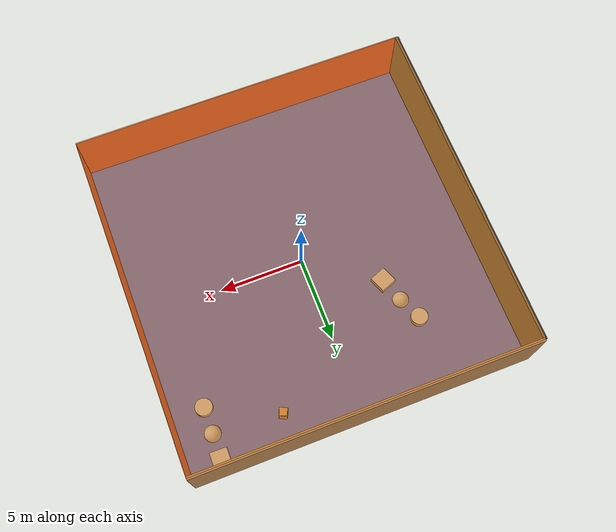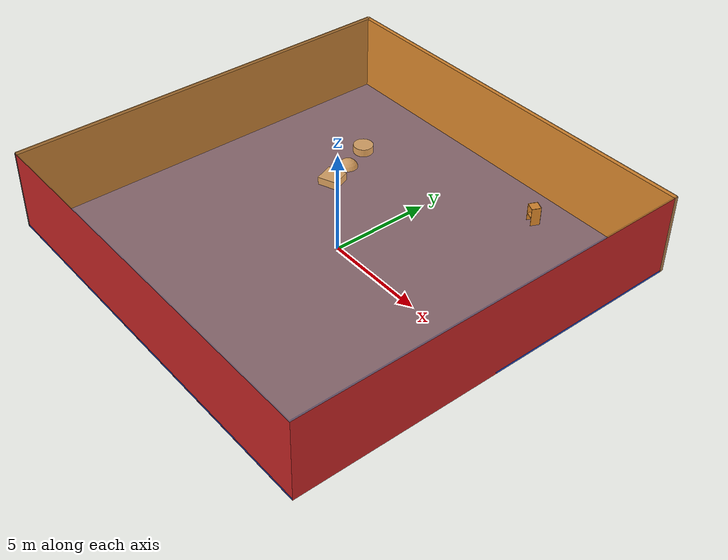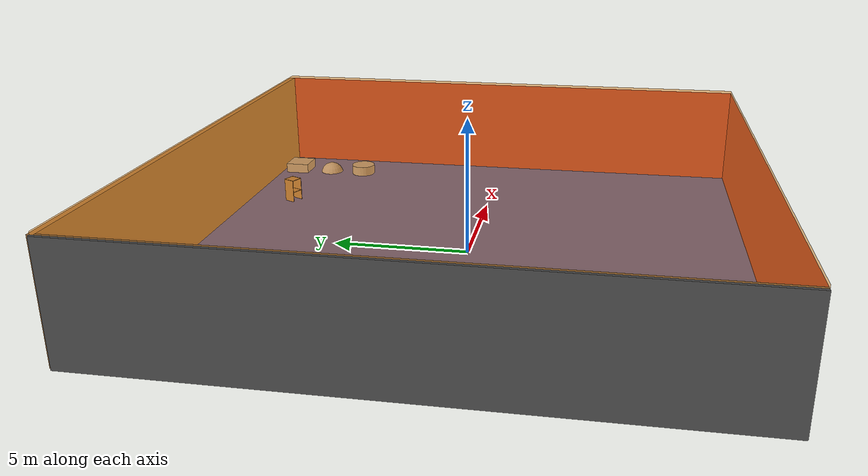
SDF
<sdf version="1.4">
 <world name="default">
  <physics type="ode">
   <max_step_size>0.001</max_step_size>
   <real_time_factor>1</real_time_factor>
   <real_time_update_rate>1000</real_time_update_rate>
   <gravity>0 0 -9.8</gravity>
  </physics>
  <scene><ambient>0.4 0.4 0.4 1</ambient><background>0.7 0.7 0.7 1</background><shadows>1</shadows></scene>
  <model name="Surrounding">
   <static>1</static>
   <link name="Ceiling">
    <collision name="Ceiling_Collision"><geometry><box><size>20 20 0.1</size></box></geometry></collision>
    <visual name="Ceiling_Visual">
     <geometry><box><size>20 20 0.1</size></box></geometry>
     <material>
      <script>
       <uri>file://media/materials/scripts/gazebo.material</uri>
       <name>Gazebo/OrangeTransparent</name>
      </script>
     </material>
    </visual>
    <pose>0 0 4.05 0 0 0</pose>
   </link>
   <link name="Wall_South">
    <collision name="Wall_South_Collision">
     <geometry><box><size>20 0 4</size></box></geometry>
     <pose>0 0 2 0 -0 0</pose>
    </collision>
    <visual name="Wall_South_Visual">
     <pose>0 0 2 0 -0 0</pose>
     <geometry><box><size>20 0 4</size></box></geometry>
     <material>
      <script><uri>file://media/materials/scripts/gazebo.material</uri><name>Gazebo/Red</name></script>
     </material>
    </visual>
    <velocity_decay><linear>0</linear><angular>0</angular></velocity_decay>
    <pose>0 -10 0 0 -0 0</pose>
   </link>
   <link name="Wall_East">
    <collision name="Wall_21_Collision">
     <geometry><box><size>20 0 4</size></box></geometry>
     <pose>0 0 2 0 -0 0</pose>
    </collision>
    <visual name="Wall_21_Visual">
     <pose>0 0 2 0 -0 0</pose>
     <geometry><box><size>20 0 4</size></box></geometry>
     <material>
      <script><uri>file://media/materials/scripts/gazebo.material</uri><name>Gazebo/Red</name></script>
     </material>
    </visual>
    <velocity_decay><linear>0</linear><angular>0</angular></velocity_decay>
    <pose>10 0 0 0 -0 1.5708</pose>
   </link>
   <link name="Wall_North">
    <collision name="Wall_22_Collision">
     <geometry><box><size>20 0.2 4</size></box></geometry>
     <pose>0 0 2 0 -0 0</pose>
    </collision>
    <visual name="Wall_22_Visual">
     <pose>0 0 2 0 -0 0</pose>
     <geometry><box><size>20 0.2 4</size></box></geometry>
     <material>
      <script><uri>file://media/materials/scripts/gazebo.material</uri><name>Gazebo/WoodFloor</name></script>
     </material>
    </visual>
    <velocity_decay><linear>0</linear><angular>0</angular></velocity_decay>
    <pose>0 10 0 0 -0 0</pose>
   </link>
   <link name="Wall_West">
    <collision name="Wall_23_Collision">
     <geometry><box><size>20 0.2 4</size></box></geometry>
     <pose>0 0 2 0 -0 0</pose>
    </collision>
    <visual name="Wall_23_Visual">
     <pose>0 0 2 0 -0 0</pose>
     <geometry><box><size>20 0.2 4</size></box></geometry>
     <material>
      <script><uri>file://media/materials/scripts/gazebo.material</uri><name>Gazebo/Road</name></script>
     </material>
    </visual>
    <velocity_decay><linear>0</linear><angular>0</angular></velocity_decay>
    <pose>-10 0 0 0 0 -1.5708</pose>
   </link>
   <link name="Ground_link">
    <collision name="collision">
     <pose>0 0 .05 0 -0 0</pose>
     <geometry><box><size>20 20 0.1</size></box></geometry>
    </collision>
    <visual name="visual">
     <pose>0 0 .05 0 -0 0</pose>
     <geometry><box><size>20 20 0.1</size></box></geometry>
     <material>
      <script><uri>file://media/materials/scripts/gazebo.material</uri><name>Gazebo/BlueGlow</name></script>
     </material>
    </visual>
   </link>
   <static>1</static>
  </model>
  <spherical_coordinates>
   <surface_model>EARTH_WGS84</surface_model>
   <latitude_deg>0</latitude_deg>
   <longitude_deg>0</longitude_deg>
   <elevation>0</elevation>
   <heading_deg>0</heading_deg>
  </spherical_coordinates>
  <light name="lightball_0" type="diffuse">
   <diffuse>0.8 0.8 0.8 1</diffuse>
   <specular>0.2 0.2 0.2 1</specular>
   <attenuation>
    <range>100</range>
    <constant>0.7</constant>
    <linear>0.01</linear>
    <quadratic>0.001</quadratic>
   </attenuation>
   <direction>-0.5 0.1 -0.9</direction>
   <pose>-9.95997589312 -6.3677155911 3.32692814193 0 0 0</pose>
  </light>
  <light name="lightball_1" type="diffuse">
   <diffuse>0.8 0.8 0.8 1</diffuse>
   <specular>0.2 0.2 0.2 1</specular>
   <attenuation>
    <range>100</range>
    <constant>0.7</constant>
    <linear>0.01</linear>
    <quadratic>0.001</quadratic>
   </attenuation>
   <direction>-0.5 0.1 -0.9</direction>
   <pose>8.35524170346 6.56382427384 1.1501881191 0 0 0</pose>
  </light>
  <light name="lightball_2" type="diffuse">
   <diffuse>0.8 0.8 0.8 1</diffuse>
   <specular>0.2 0.2 0.2 1</specular>
   <attenuation>
    <range>100</range>
    <constant>0.7</constant>
    <linear>0.01</linear>
    <quadratic>0.001</quadratic>
   </attenuation>
   <direction>-0.5 0.1 -0.9</direction>
   <pose>9.39095474898 -7.24726673993 3.53011658123 0 0 0</pose>
  </light>
  <light name="lightball_3" type="diffuse">
   <diffuse>0.8 0.8 0.8 1</diffuse>
   <specular>0.2 0.2 0.2 1</specular>
   <attenuation>
    <range>100</range>
    <constant>0.7</constant>
    <linear>0.01</linear>
    <quadratic>0.001</quadratic>
   </attenuation>
   <direction>-0.5 0.1 -0.9</direction>
   <pose>-2.60093742794 8.63494463969 2.79804645279 0 0 0</pose>
  </light>
  <light name="lightball_4" type="diffuse">
   <diffuse>0.8 0.8 0.8 1</diffuse>
   <specular>0.2 0.2 0.2 1</specular>
   <attenuation>
    <range>100</range>
    <constant>0.7</constant>
    <linear>0.01</linear>
    <quadratic>0.001</quadratic>
   </attenuation>
   <direction>-0.5 0.1 -0.9</direction>
   <pose>0.384543184593 3.39342078442 2.89408428823 0 0 0</pose>
  </light>
  <light name="lightball_5" type="diffuse">
   <diffuse>0.8 0.8 0.8 1</diffuse>
   <specular>0.2 0.2 0.2 1</specular>
   <attenuation>
    <range>100</range>
    <constant>0.7</constant>
    <linear>0.01</linear>
    <quadratic>0.001</quadratic>
   </attenuation>
   <direction>-0.5 0.1 -0.9</direction>
   <pose>4.01293606458 2.66715083126 2.37140303185 0 0 0</pose>
  </light>
  <light name="lightball_6" type="diffuse">
   <diffuse>0.8 0.8 0.8 1</diffuse>
   <specular>0.2 0.2 0.2 1</specular>
   <attenuation>
    <range>100</range>
    <constant>0.7</constant>
    <linear>0.01</linear>
    <quadratic>0.001</quadratic>
   </attenuation>
   <direction>-0.5 0.1 -0.9</direction>
   <pose>-9.98631904597 8.12462866271 0.630695799655 0 0 0</pose>
  </light>
  <light name="lightball_7" type="diffuse">
   <diffuse>0.8 0.8 0.8 1</diffuse>
   <specular>0.2 0.2 0.2 1</specular>
   <attenuation>
    <range>100</range>
    <constant>0.7</constant>
    <linear>0.01</linear>
    <quadratic>0.001</quadratic>
   </attenuation>
   <direction>-0.5 0.1 -0.9</direction>
   <pose>4.05411232821 -9.48395431213 2.47364656272 0 0 0</pose>
  </light>
  <light name="lightball_8" type="diffuse">
   <diffuse>0.8 0.8 0.8 1</diffuse>
   <specular>0.2 0.2 0.2 1</specular>
   <attenuation>
    <range>100</range>
    <constant>0.7</constant>
    <linear>0.01</linear>
    <quadratic>0.001</quadratic>
   </attenuation>
   <direction>-0.5 0.1 -0.9</direction>
   <pose>-6.59818598962 -6.05559602417 2.07704633376 0 0 0</pose>
  </light>
  <light name="lightball_9" type="diffuse">
   <diffuse>0.8 0.8 0.8 1</diffuse>
   <specular>0.2 0.2 0.2 1</specular>
   <attenuation>
    <range>100</range>
    <constant>0.7</constant>
    <linear>0.01</linear>
    <quadratic>0.001</quadratic>
   </attenuation>
   <direction>-0.5 0.1 -0.9</direction>
   <pose>4.01487382031 3.16887914484 0.709198750689 0 0 0</pose>
  </light>
  <light name="lightball_10" type="diffuse">
   <diffuse>0.8 0.8 0.8 1</diffuse>
   <specular>0.2 0.2 0.2 1</specular>
   <attenuation>
    <range>100</range>
    <constant>0.7</constant>
    <linear>0.01</linear>
    <quadratic>0.001</quadratic>
   </attenuation>
   <direction>-0.5 0.1 -0.9</direction>
   <pose>7.29448556352 6.12591198439 3.09144179719 0 0 0</pose>
  </light>
  <include>
   <uri>model://textured_shapes</uri>
   <pose>-4.55881608566 4.27443511784 0 0 0 0.369368184762</pose>
  </include>
  <include><uri>model://cabinet</uri><pose>4.15348079931 8.0858026149 0 0 0 1.14079871505</pose></include>
  <include>
   <uri>model://textured_shapes</uri>
   <pose>8.17667393432 7.67665430402 0 0 0 3.12943607183</pose>
  </include>
 </world>
</sdf>

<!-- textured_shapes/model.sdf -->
<sdf version="1.6">
  <model name="textured_shapes">
    <pose>0 0 0.5 0 0 0</pose>
    <link name="box">
      <pose>0 -1.5 0 0 0 0</pose>
      <collision name="collision">
        <geometry>
          <box>
            <size>1 1 1</size>
          </box>
        </geometry>
      </collision>
      <visual name="visual">
        <geometry>
          <box>
            <size>1 1 1</size>
          </box>
        </geometry>
        <material>
          <script>
            <uri>model://../model_source/models/textured_shapes/materials/scripts</uri>
            <uri>model://../model_source/models/textured_shapes/materials/textures</uri>
            <name>TexturedShape/Squares</name>
          </script>
        </material>
      </visual>
    </link>
    <link name="sphere">
      <collision name="collision">
        <geometry>
          <sphere>
            <radius>0.5</radius>
          </sphere>
        </geometry>
      </collision>
      <visual name="visual">
        <geometry>
          <sphere>
            <radius>0.5</radius>
          </sphere>
        </geometry>
        <material>
          <script>
            <uri>model://../model_source/models/textured_shapes/materials/scripts</uri>
            <uri>model://../model_source/models/textured_shapes/materials/textures</uri>
            <name>TexturedShape/Squares</name>
          </script>
        </material>
      </visual>
    </link>
    <link name="cylinder">
      <pose>0 1.5 0 0 0 0</pose>
      <collision name="collision">
        <geometry>
          <cylinder>
            <radius>0.5</radius>
            <length>1</length>
          </cylinder>
        </geometry>
      </collision>
      <visual name="visual">
        <geometry>
          <cylinder>
            <radius>0.5</radius>
            <length>1</length>
          </cylinder>
        </geometry>
        <material>
          <script>
            <uri>model://../model_source/models/textured_shapes/materials/scripts</uri>
            <uri>model://../model_source/models/textured_shapes/materials/textures</uri>
            <name>TexturedShape/Squares</name>
          </script>
        </material>
      </visual>
    </link>
  </model>
</sdf>

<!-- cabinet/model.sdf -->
<sdf version="1.5">
  <model name="cabinet">
    <static>true</static>
    <link name="cabinet_bottom_plate">
      <inertial>
        <pose>0 0 -1 0 0 0</pose>
        <inertia>
          <ixx>2.050000</ixx>
          <ixy>0</ixy>
          <ixz>0</ixz>
          <iyy>2.050000</iyy>
          <iyz>0</iyz>
          <izz>2.050000</izz>
        </inertia>
        <mass>25.000000</mass>
      </inertial>
      <collision name="cabinet_bottom_plate_geom">
        <pose>0 0 0.010000 0 0 0</pose>
        <geometry>
          <box>
            <size>0.450000 0.450000 0.020000</size>
          </box>
        </geometry>
      </collision>
      <visual name="cabinet_bottom_plate_geom_visual">
        <pose>0 0 0.010000 0 0 0</pose>
        <geometry>
          <box>
            <size>0.450000 0.450000 0.020000</size>
          </box>
        </geometry>
        <material>
          <script>
            <uri>model://media/materials/scripts/gazebo.material</uri>
            <name>Gazebo/Wood</name>
          </script>
        </material>
      </visual>
      <collision name="cabinet_bottom_plate_geom_cabinet_back_plate">
        <pose>0.235000 0 0.510000 0 0 0</pose>
        <geometry>
          <box>
            <size>0.020000 0.450000 1.020000</size>
          </box>
        </geometry>
      </collision>
      <visual name="cabinet_bottom_plate_geom_cabinet_back_plate_visual">
        <pose>0.235000 0 0.510000 0 0 0</pose>
        <geometry>
          <box>
            <size>0.020000 0.450000 1.020000</size>
          </box>
        </geometry>
        <material>
          <script>
            <uri>model://media/materials/scripts/gazebo.material</uri>
            <name>Gazebo/Wood</name>
          </script>
        </material>
      </visual>
      <collision name="cabinet_bottom_plate_geom_cabinet_left_plate">
        <pose>0 0.235000 0.510000 0 0 0</pose>
        <geometry>
          <box>
            <size>0.450000 0.020000 1.020000</size>
          </box>
        </geometry>
      </collision>
      <visual name="cabinet_bottom_plate_geom_cabinet_left_plate_visual">
        <pose>0 0.235000 0.510000 0 0 0</pose>
        <geometry>
          <box>
            <size>0.450000 0.020000 1.020000</size>
          </box>
        </geometry>
        <material>
          <script>
            <uri>model://media/materials/scripts/gazebo.material</uri>
            <name>Gazebo/Wood</name>
          </script>
        </material>
      </visual>
      <collision name="cabinet_bottom_plate_geom_cabinet_middle_plate">
        <pose>0 0 0.510000 0 0 0</pose>
        <geometry>
          <box>
            <size>0.450000 0.450000 0.020000</size>
          </box>
        </geometry>
      </collision>
      <visual name="cabinet_bottom_plate_geom_cabinet_middle_plate_visual">
        <pose>0 0 0.510000 0 0 0</pose>
        <geometry>
          <box>
            <size>0.450000 0.450000 0.020000</size>
          </box>
        </geometry>
        <material>
          <script>
            <uri>model://media/materials/scripts/gazebo.material</uri>
            <name>Gazebo/Wood</name>
          </script>
        </material>
      </visual>
      <collision name="cabinet_bottom_plate_geom_cabinet_right_plate">
        <pose>0 -0.235000 0.510000 0 0 0</pose>
        <geometry>
          <box>
            <size>0.450000 0.020000 1.020000</size>
          </box>
        </geometry>
      </collision>
      <visual name="cabinet_bottom_plate_geom_cabinet_right_plate_visual">
        <pose>0 -0.235000 0.510000 0 0 0</pose>
        <geometry>
          <box>
            <size>0.450000 0.020000 1.020000</size>
          </box>
        </geometry>
        <material>
          <script>
            <uri>model://media/materials/scripts/gazebo.material</uri>
            <name>Gazebo/Wood</name>
          </script>
        </material>
      </visual>
      <collision name="cabinet_bottom_plate_geom_cabinet_top_plate">
        <pose>0 0 1.010000 0 0 0</pose>
        <geometry>
          <box>
            <size>0.450000 0.450000 0.020000</size>
          </box>
        </geometry>
      </collision>
      <visual name="cabinet_bottom_plate_geom_cabinet_top_plate_visual">
        <pose>0 0 1.010000 0 0 0</pose>
        <geometry>
          <box>
            <size>0.450000 0.450000 0.020000</size>
          </box>
        </geometry>
        <material>
          <script>
            <uri>model://media/materials/scripts/gazebo.material</uri>
            <name>Gazebo/Wood</name>
          </script>
        </material>
      </visual>
    </link>
  </model>
</sdf>
